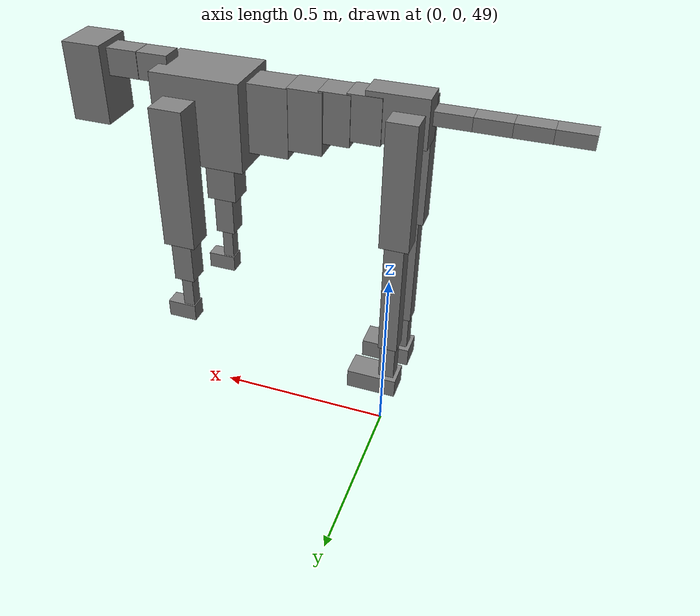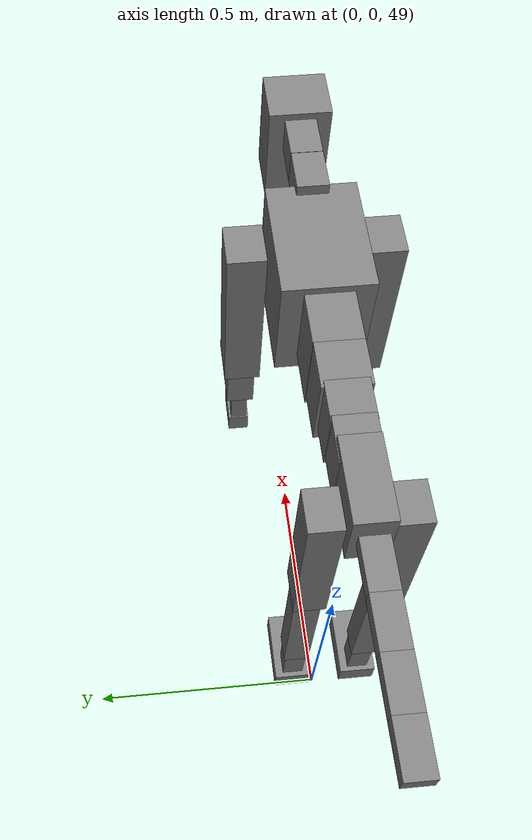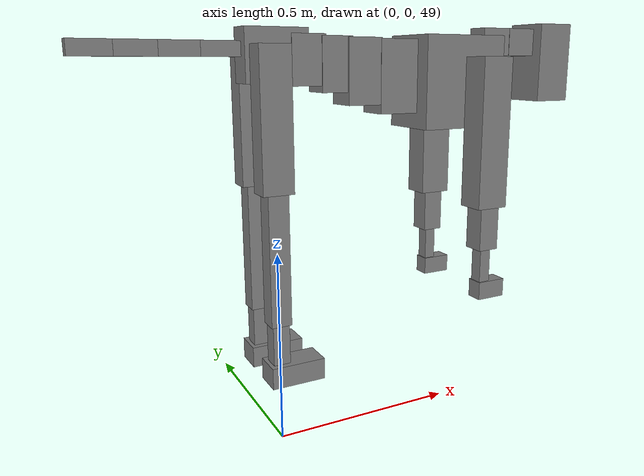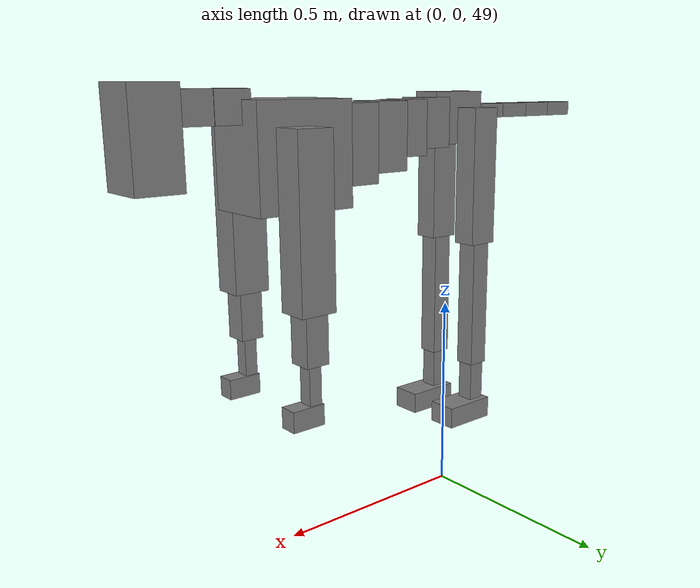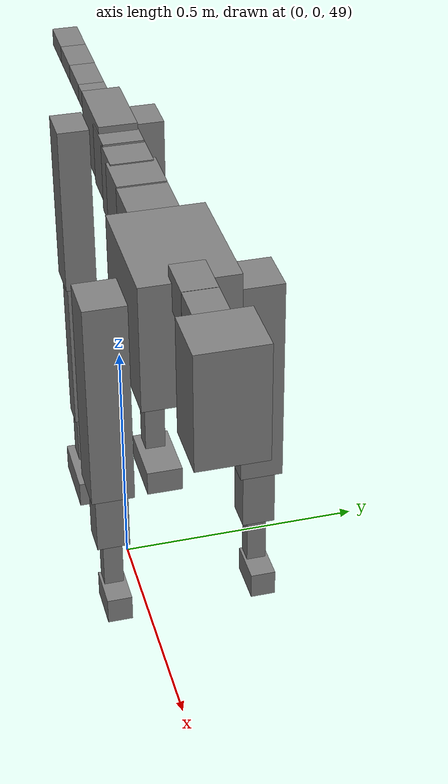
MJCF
<mujoco model="dog">

    <default>
        <joint armature="0.02" stiffness="1" damping="0.2" limited="true"/>
        <geom condim="3" friction="1 0.05 0.05" margin="0.01"/>
        <motor ctrllimited="true" ctrlrange="-1.0 1.0" forcelimited="true" gear="50"/>
    </default>

    <compiler inertiafromgeom="true" angle="radian"/>

    <option timestep="0.016" iterations="50" tolerance="1e-10" solver="Newton" jacobian="dense" cone="pyramidal"/>

    <size nconmax="20000" njmax="60000" nstack="5000000"/>
    <visual>
        <map force="0.1" zfar="30"/>
        <rgba haze="0.15 0.25 0.35 1"/>
        <quality shadowsize="2048"/>
        <global offwidth="800" offheight="800"/>
    </visual>

    <asset>
        <texture type="skybox" builtin="gradient" rgb1="0.3 0.5 0.7" rgb2="0 0 0" width="512" height="512"/>
        <texture name="texplane" type="2d" builtin="checker" rgb1=".2 .3 .4" rgb2=".1 0.15 0.2" width="512" height="512"
                 mark="cross" markrgb=".8 .8 .8"/>
        <texture name="texgeom" type="cube" builtin="flat" mark="cross" width="127" height="1278" rgb1="0.8 0.6 0.4"
                 rgb2="0.8 0.6 0.4" markrgb="1 1 1" random="0.01"/>

        <material name="matplane" reflectance="0.3" texture="texplane" texrepeat="1 1" texuniform="true"/>
        <material name="matgeom" texture="texgeom" texuniform="true" rgba="0.8 0.6 .4 1"/>
    </asset>

    <worldbody>
        <geom name="floor" pos="0 0 0" size="0 0 .25" type="plane" material="matplane" condim="3"/>

        <light directional="false" diffuse=".2 .2 .2" specular="0 0 0" pos="0 0 5" dir="0 0 -1" castshadow="false"/>
        <light mode="targetbodycom" target="torso" directional="false" diffuse=".8 .8 .8" specular="0.3 0.3 0.3"
               pos="0 0 4.0" dir="0 0 -1"/>

        <body name="root" pos="0 0 50">
            <freejoint name="root_1"/>
            <geom type="box" pos="0 0 -0.02" size="0.0774  0.0358  0.063" density="2030"/>

            <body name="spine1" pos="0.054 0 0">
                <joint name="spine1_y" axis="0 1 0" range="0 0.7" limited="true"/>
                <geom type="box" pos="0.02375 0 -0.03" size="0.04375  0.0375  0.05985" density="2030"/>

                <body name="spine2" pos="0.0612 0 0">
                    <joint name="spine2_y" axis="0 1 0" range="-0.15 0.15" limited="true"/>
                    <geom type="box" pos="0.03555  0  -0.04" size="0.04055  0.039  0.06615" density="2030"/>

                    <body name="spine3" pos="0.0730 0 0">
                        <joint name="spine3_y" axis="0 1 0" range="-0.15 0.15" limited="true"/>
                        <geom type="box" pos="0.03555  0  -0.057" size="0.04555  0.0445  0.081" density="2030"/>

                        <body name="spine4" pos="0.0780 0 0">
                            <joint name="spine4_y" axis="0 1 0" range="-0.15 0.15" limited="true"/>
                            <geom type="box" pos="0.05265  0  -0.07" size="0.05265  0.045  0.09135" density="2030"/>

                            <body name="torso" pos="0.1082 0 0">
                                <joint name="torso_y" axis="0 1 0" range="-0.15 0.15" limited="true"/>
                                <geom type="box" pos="0.11925  0  -0.085" size="0.11925  0.085  0.11745"
                                      density="2030"/>

                                <body name="neck1" pos="0.2160  0   0.0180">
                                    <joint name="neck1_y" axis="0 1 0" range="-1.2  -1" limited="true"/>
                                    <geom type="box" pos="0.0423  0  0" size="0.0423  0.03  0.036" density="2325"/>

                                    <body name="neck2" pos="0.0853  0  0">
                                        <joint name="neck2_y" axis="0 1 0" range="0.1  0" limited="true"/>
                                        <geom type="box" pos="0.0423  0  0" size="0.0423  0.03  0.036" density="2325"/>

                                        <body name="head" pos="0.0853  0  0">
                                            <joint name="head_y" axis="0 1 0" range="-0.3  -0.2" limited="true"/>
                                            <geom type="box" pos="0.0531  0  -0.055" size="0.0531  0.06  0.1044"
                                                  density="4030"/>

                                        </body>
                                    </body>
                                </body>

                                <body name="front_shoulder" pos="0.156  0   -0.0480">
                                    <joint name="front_shoulder_y" axis="0 1 0" range="-1 1.5" limited="true"/>
                                    <geom type="box" pos="0 0.13 -0.1649" size="0.0436  0.0372  0.1916" density="1158"/>
                                    <geom type="box" pos="0 -0.13 -0.1649" size="0.0436  0.0372  0.1916"
                                          density="1158"/>

                                    <body name="front_elbow" pos="0  0  -0.3298">
                                        <joint name="front_elbow_y" axis="0 1 0" range="-2 0" limited="true"/>
                                        <geom type="box" pos="0 0.13 -0.0701" size="0.0281  0.0287  0.0701"
                                              density="1081"/>
                                        <geom type="box" pos="0 -0.13 -0.0701" size="0.0281  0.0287  0.0701"
                                              density="1081"/>

                                        <body name="front_wrist" pos="0  0  -0.1402">
                                            <joint name="front_wrist_y" axis="0 1 0" range="-0.2 0" limited="true"/>
                                            <geom type="box" pos="0 0.13 -0.0526" size="0.0155  0.0172  0.0657"
                                                  density="1664"/>
                                            <geom type="box" pos="0 -0.13 -0.0526" size="0.0155  0.0172  0.0657"
                                                  density="1664"/>

                                            <body name="front_finger_end" pos="0  0  -0.1052">
                                                <joint name="front_finger_y" axis="0 1 0" range="-0.4 1"
                                                       limited="true"/>
                                                <geom type="box" pos="0.0219  0.13  -0.0090"
                                                      size="0.0402  0.0219  0.0240" density="1515"/>
                                                <geom type="box" pos="0.0219  -0.13  -0.0090"
                                                      size="0.0402  0.0219  0.0240" density="1515"/>

                                            </body>

                                        </body>
                                    </body>
                                </body>

                            </body>
                        </body>
                    </body>
                </body>
            </body>

            <body name="back_hip" pos="-0.03 0 -0.018">
                <joint name="back_hip_y" axis="0 1 0" range="-1.5 0.3" limited="true"/>
                <geom type="box" pos="0 0.07 -0.1449" size="0.0383  0.0300  0.1677" density="1154"/>
                <geom type="box" pos="0 -0.07 -0.1449" size="0.0383  0.0300  0.1677" density="1154"/>

                <body name="back_knee" pos="0  0  -0.2897">
                    <joint name="back_knee_y" axis="0 1 0" range="0 2.8" limited="true"/>
                    <geom type="box" pos="0 0.07 -0.1633" size="0.0255  0.0251  0.1789" density="1227"/>
                    <geom type="box" pos="0 -0.07 -0.1633" size="0.0255  0.0251  0.1789" density="1227"/>

                    <body name="back_ankle" pos="0  0  -0.3266">
                        <joint name="back_ankle_y" axis="0 1 0" range="-2.2 0" limited="true"/>
                        <geom type="box" pos="0 0.07 -0.0645" size="0.0210  0.0210  0.0757" density="1284"/>
                        <geom type="box" pos="0 -0.07 -0.0645" size="0.0210  0.0210  0.0757" density="1284"/>

                        <body name="back_toe_end" pos="0  0  -0.1290">
                            <joint name="back_toe_y" axis="0 1 0" range="-0.4 1" limited="true"/>
                            <geom type="box" pos="0.0370  0.07  -0.0115" size="0.0679  0.0370  0.0265" density="1515"/>
                            <geom type="box" pos="0.0370  -0.07  -0.0115" size="0.0679  0.0370  0.0265" density="1515"/>

                        </body>
                    </body>
                </body>
            </body>

            <body name="tail1" pos="-0.074 0 -0.006">
                <joint name="tail1_y" axis="0 1 0" range="-0.2 0.2" limited="true"/>
                <geom type="box" pos="-0.0536  0  0" size="0.045  0.025  0.0175" density="1587"/>

                <body name="tail2" pos="-0.09 0 0">
                    <joint name="tail2_y" axis="0 1 0" range="-0.2 0.2" limited="true"/>
                    <geom type="box" pos="-0.0536  0  0" size="0.045  0.025  0.0175" density="1587"/>

                    <body name="tail3" pos="-0.09 0 0">
                        <joint name="tail3_y" axis="0 1 0" range="-0.2 0.2" limited="true"/>
                        <geom type="box" pos="-0.0536  0  0" size="0.045  0.025  0.0175" density="1587"/>

                        <body name="tail4" pos="-0.09 0 0">
                            <joint name="tail4_y" axis="0 1 0" range="-0.2 0.2" limited="true"/>
                            <geom type="box" pos="-0.0536  0  0" size="0.045  0.025  0.0175" density="1587"/>

                        </body>
                    </body>
                </body>
            </body>
        </body>
    </worldbody>

    <actuator>
        <motor joint="spine1_y" forcerange="-150 150     "/>
        <motor joint="spine2_y" forcerange="-150 150     "/>
        <motor joint="spine3_y" forcerange="-150 150     "/>
        <motor joint="spine4_y" forcerange="-150 150     "/>
        <motor joint="torso_y" forcerange="-150 150     "/>
        <motor joint="neck1_y" forcerange="-100 100       "/>
        <motor joint="neck2_y" forcerange="-100 100       "/>
        <motor joint="head_y" forcerange="-150 150       "/>
        <motor joint="front_shoulder_y" forcerange="-184.88 163.42"/>
        <motor joint="front_elbow_y" forcerange="-173.97 134.67"/>
        <motor joint="front_wrist_y" forcerange="-73.31 64.14"/>
        <motor joint="front_finger_y" forcerange="-47.50 29.34"/>
        <motor joint="back_hip_y" forcerange="-255.65 344.78"/>
        <motor joint="back_knee_y" forcerange="-287.62 277.63"/>
        <motor joint="back_angle_y" forcerange="-173.17 63.31"/>
        <motor joint="back_toe_y" forcerange="-121.30 94.80"/>
        <motor joint="tail1_y" forcerange="-50 50     "/>
        <motor joint="tail2_y" forcerange="-50 50     "/>
        <motor joint="tail3_y" forcerange="-50 50     "/>
        <motor joint="tail4_y" forcerange="-50 50     "/>
    </actuator>
</mujoco>
